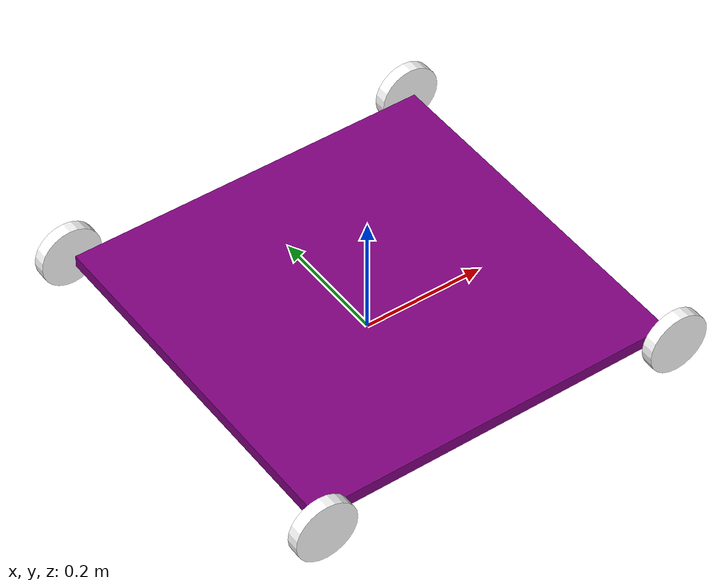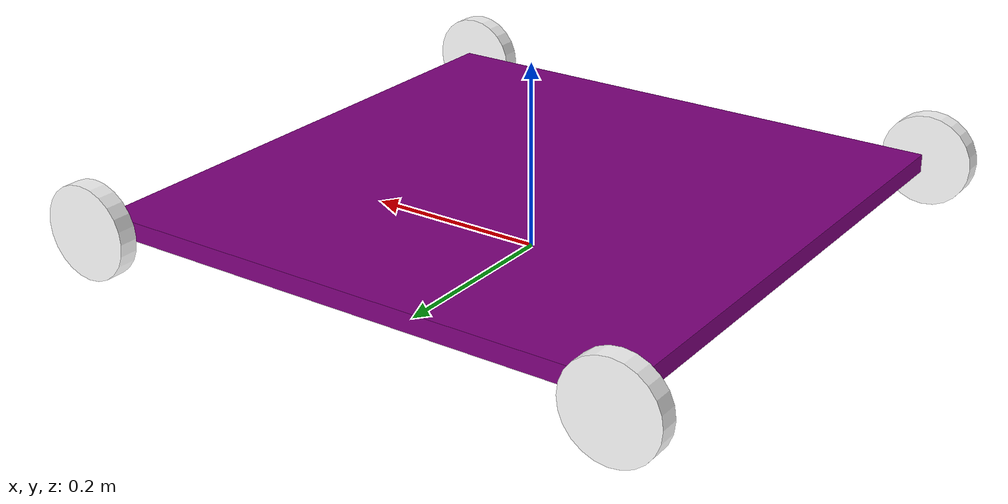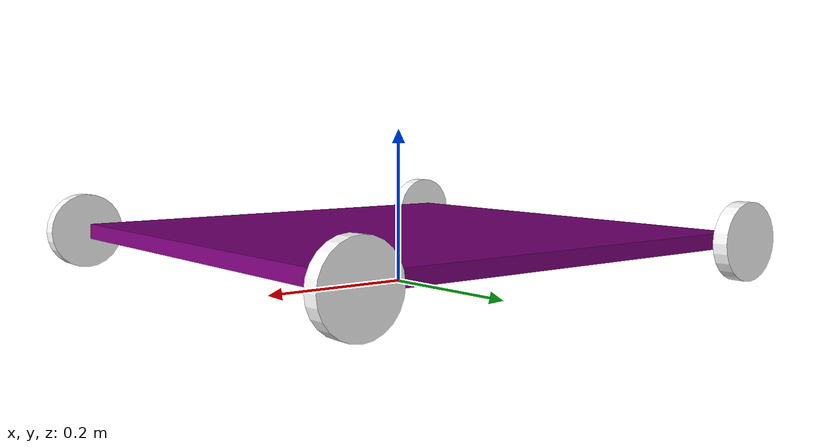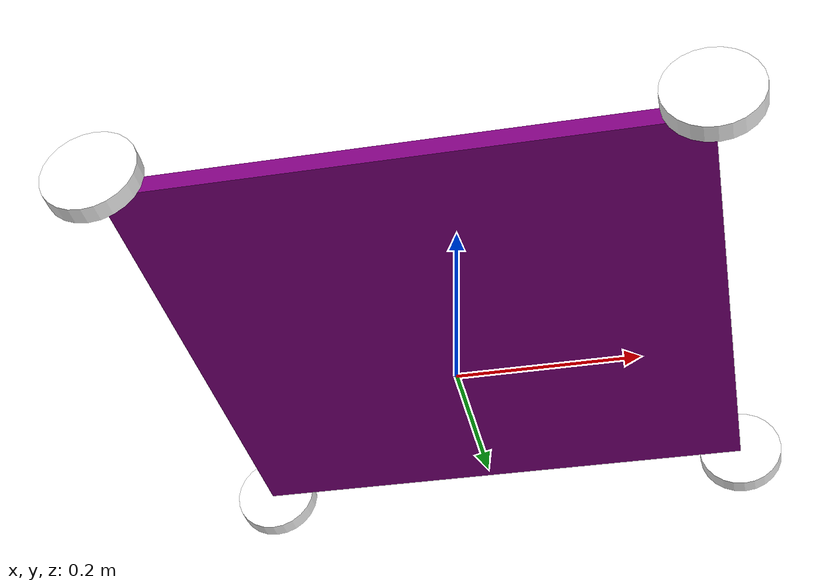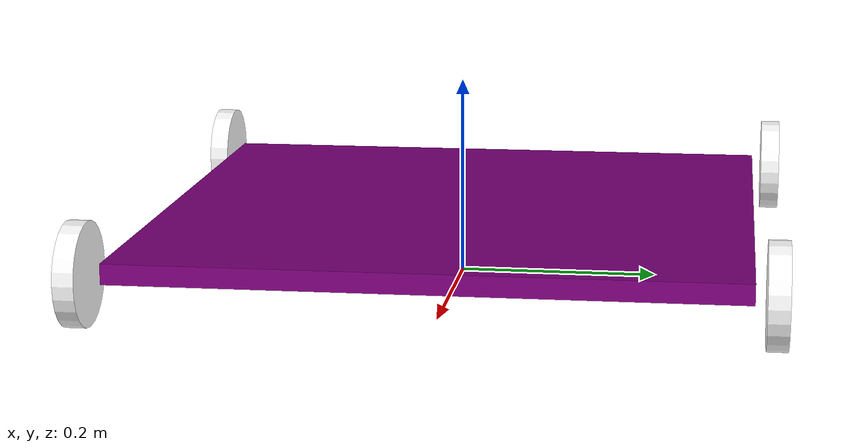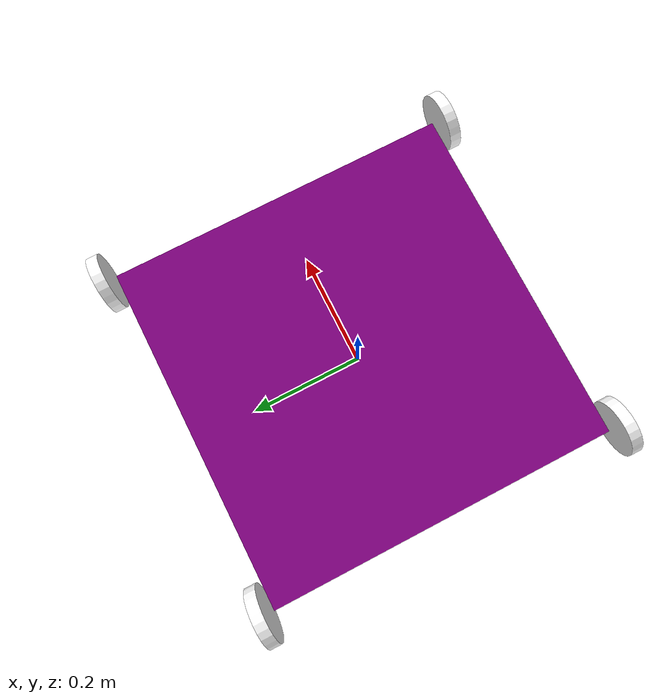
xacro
<?xml version="1.0"?>
<robot xmlns:xacro="http://www.ros.org/wiki/xacro">
    <xacro:include filename="inertial_macros.xacro" />

    <!-- Colors -->
    <material name="purple">
        <color rgba="0.5 0 0.5 1"/>
    </material>

    <material name="white">
        <color rgba="1 1 1 1"/>
    </material>

    <!-- Chassis Properties -->
    <xacro:property name="chassis_width" value="0.6"/>       <!-- 6 meter = 600 cm -->
    <xacro:property name="chassis_height" value="0.6"/>      <!-- 6 meter = 600 cm -->
    <xacro:property name="chassis_depth" value="0.02"/>      <!-- 0.02meter = 2 cm -->
    <xacro:property name="chassis_mass" value="1"/>          <!-- 1 kg -->

    <!-- Wheel Properties -->
    <xacro:property name="wheel_radius" value="0.05"/>
    <xacro:property name="wheel_width" value="0.02"/>
    <xacro:property name="wheel_mass" value="1"/>

    <!-- Wheel Macro -->
    <xacro:macro name="wheel_macro" params="wheel_name wheel_color mu1 mu2 type">    <!-- mu max_val = 1 (max friction) min_val = 0(min friction) -->
        <link name="${wheel_name}">
            <visual>
                <origin xyz="0 0 0" rpy="0 0 0"/>
                <geometry>
                   <cylinder length="${wheel_width}" radius="${wheel_radius}" />
                </geometry>
                <material name="white"/>
            </visual>

            <collision>
                <origin xyz="0 0 0" rpy="0 0 0"/>
                <geometry>
                    <cylinder length="${wheel_width}" radius="${wheel_radius}" />
                </geometry>
            </collision>

            <xacro:inertial_cylinder mass="${wheel_mass}" length="${wheel_width}" radius="${wheel_radius}">
                <origin xyz="0 0 0" rpy="0 0 0"/>
            </xacro:inertial_cylinder>
        </link>

        <gazebo reference="${wheel_name}">
            <material>${wheel_color}</material>

            <mu1 value="${mu1}"/>
            <mu2 value="${mu2}"/>
        </gazebo>

    </xacro:macro>

    <!-- BASE LINK -->
    <link name="base_link">
    </link>

    <!-- Chassis Link -->
    <joint name="chassis_joint" type="fixed">
        <parent link="base_link"/>
        <child link="chassis_link"/>
        <origin xyz="0 0 0.06"/>    <!-- xyz = 0, 0, height_to_raise + chassis_depth/2 -->
    </joint>

    <link name="chassis_link">
        <visual>
            <origin xyz="0 0 0" rpy="0 0 0"/>
            <geometry>
                <box size="${chassis_width} ${chassis_height} ${chassis_depth}"/>
            </geometry>
            <material name="purple"/>
        </visual>

        <collision>
            <origin xyz="0 0 0" rpy="0 0 0"/>
            <geometry>
                <box size="${chassis_width} ${chassis_height} ${chassis_depth}"/>
            </geometry>
        </collision>

        <xacro:inertial_box mass="${chassis_mass}" x="${chassis_width}" y="${chassis_height}" z="${chassis_depth}">
            <origin xyz="0 0 0" rpy="0 0 0"/>
        </xacro:inertial_box>
    </link>

    <gazebo reference="chassis_link">
        <material>Gazebo/Purple</material>
    </gazebo>

    <!-- Front Left Wheel -->
    <joint name="dummy_left_joint" type="continuous">
        <parent link="chassis_link" />
        <child link="front_left_link" />
        <origin xyz="0.3 0.32 0" rpy="${pi/2} 0 0" />
        <axis xyz="0 0 -1"/>
    </joint>

    <xacro:wheel_macro wheel_name="front_left_link" wheel_color="Gazebo/Green" mu1="0.0" mu2="0.0" type="2"/>

    <!-- Front Right Wheel -->
    <joint name="dummy_right_joint" type="continuous">
        <parent link="chassis_link" />
        <child link="front_right_link" />
        <origin xyz="0.3 -0.32 0" rpy="${pi/2} 0 0" />
        <axis xyz="0 0 -1"/>
    </joint>

    <xacro:wheel_macro wheel_name="front_right_link" wheel_color="Gazebo/Green" mu1="0.0" mu2="0.0" type="1"/>

    <!-- Rear Left Wheel -->
    <joint name="left_wheel_joint" type="continuous">
        <parent link="chassis_link" />
        <child link="rear_left_link" />
        <origin xyz="-0.3 0.32 0" rpy="${pi/2} 0 0" />
        <axis xyz="0 0 -1"/>
    </joint>

    <xacro:wheel_macro wheel_name="rear_left_link" wheel_color="Gazebo/Yellow" mu1="0.0" mu2="0.0" type="1"/>

    <!-- Rear Right Wheel -->
    <joint name="right_wheel_joint" type="continuous">
        <parent link="chassis_link" />
        <child link="rear_right_link" />
        <origin xyz="-0.3 -0.32 0" rpy="${pi/2} 0 0" />
        <axis xyz="0 0 -1"/>
        <!-- 0.3 (half chassis width) + 0.01 (half tyer width) + 0.01 (safety margin). -->

    </joint>

    <xacro:wheel_macro wheel_name="rear_right_link" wheel_color="Gazebo/Yellow" mu1="0.0" mu2="0.0" type="2"/>

</robot>

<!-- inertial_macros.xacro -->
<robot xmlns:xacro="http://www.ros.org/wiki/xacro" >

    <!-- Specify some standard inertial calculations https://en.wikipedia.org/wiki/List_of_moments_of_inertia -->

    <xacro:macro name="inertial_sphere" params="mass radius *origin">
        <inertial>
            <xacro:insert_block name="origin"/>
            <mass value="${mass}" />
            <inertia ixx="${(2/5) * mass * (radius*radius)}" ixy="0.0" ixz="0.0"
                    iyy="${(2/5) * mass * (radius*radius)}" iyz="0.0"
                    izz="${(2/5) * mass * (radius*radius)}" />
        </inertial>
    </xacro:macro>

    <xacro:macro name="inertial_box" params="mass x y z *origin">
        <inertial>
            <xacro:insert_block name="origin"/>
            <mass value="${mass}" />
            <inertia ixx="${(1/12) * mass * (y*y+z*z)}" ixy="0.0" ixz="0.0"
                    iyy="${(1/12) * mass * (x*x+z*z)}" iyz="0.0"
                    izz="${(1/12) * mass * (x*x+y*y)}" />
        </inertial>
    </xacro:macro>

    <xacro:macro name="inertial_cylinder" params="mass length radius *origin">
        <inertial>
            <xacro:insert_block name="origin"/>
            <mass value="${mass}" />
            <inertia ixx="${(1/12) * mass * (3*radius*radius + length*length)}" ixy="0.0" ixz="0.0"
                    iyy="${(1/12) * mass * (3*radius*radius + length*length)}" iyz="0.0"
                    izz="${(1/2) * mass * (radius*radius)}" />
        </inertial>
    </xacro:macro>

</robot>
